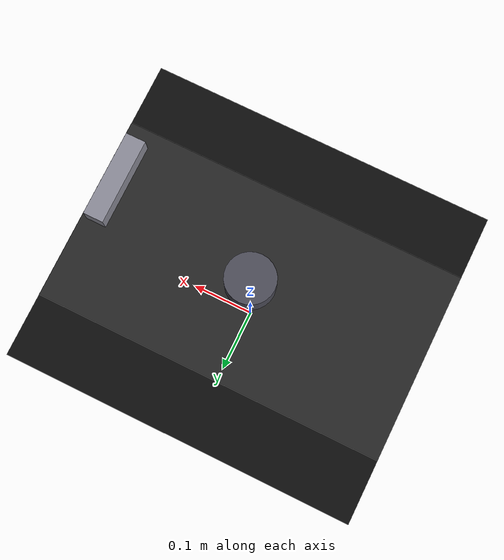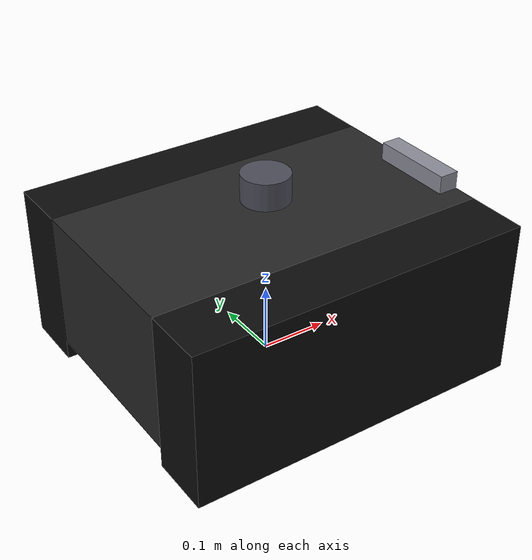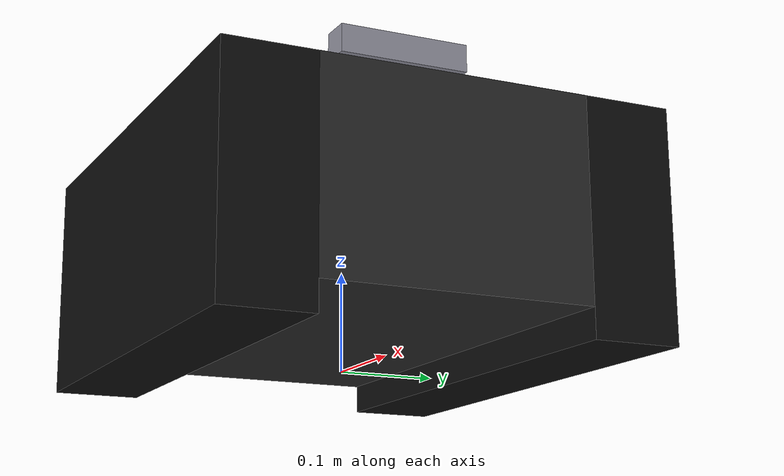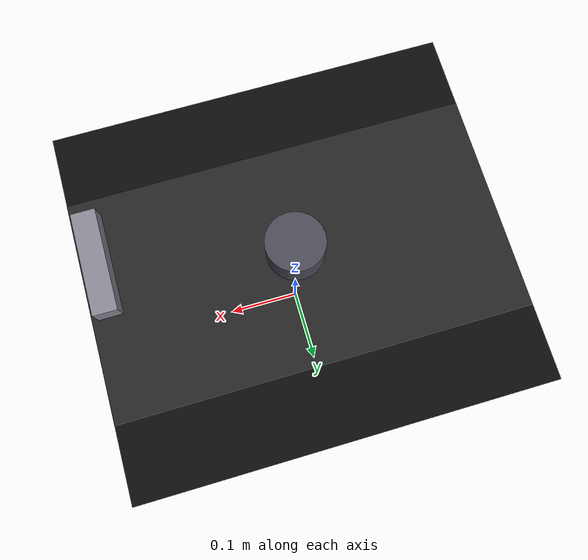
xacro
<?xml version="1.0"?>
<robot name="cugo_v3" xmlns:xacro="http://www.ros.org/wiki/xacro">

  <!-- ===== 車体寸法（要実測） ===== -->
  <xacro:arg name="body_length" default="0.50"/>   <!-- 要実測: 前後長（クローラー含む） -->
  <xacro:arg name="body_width"  default="0.45"/>   <!-- 要実測: 左右幅（クローラー含む） -->
  <xacro:arg name="body_height" default="0.20"/>   <!-- 要実測: 地面から天板までの高さ - 最低地上高 -->
  <xacro:arg name="body_clearance" default="0.03"/> <!-- 要実測: 箱の下面の地面からの高さ（クローラーは接地するので小さめ） -->

  <!-- ===== LiDAR（X4 PRO）取付位置（要実測） ===== -->
  <!-- 既定: 天板の中央。z はスキャン面（回転部の中央）の地面からの高さ -->
  <xacro:arg name="lidar_x"   default="0.0"/>    <!-- 要実測 -->
  <xacro:arg name="lidar_y"   default="0.0"/>    <!-- 要実測 -->
  <xacro:arg name="lidar_z"   default="0.28"/>   <!-- 要実測 -->
  <xacro:arg name="lidar_yaw" default="-1.5708"/> <!-- 実機 RViz で確認: スキャンが +90°（左）にずれていたため -90° 補正 -->

  <!-- ===== カメラ（D455）取付位置（要実測） ===== -->
  <!-- 既定: 車体前端の上。camera_link は D455 の左 IR カメラ（depth 原点）付近、x 前方 -->
  <xacro:arg name="camera_x"     default="0.24"/>  <!-- 要実測 -->
  <xacro:arg name="camera_y"     default="0.0"/>   <!-- 要実測 -->
  <xacro:arg name="camera_z"     default="0.25"/>  <!-- 要実測 -->
  <xacro:arg name="camera_roll"  default="0.0"/>   <!-- 要実測 -->
  <xacro:arg name="camera_pitch" default="0.0"/>   <!-- 要実測: 下向きなら正 -->
  <xacro:arg name="camera_yaw"   default="0.0"/>   <!-- 要実測 -->

  <xacro:property name="L"  value="$(arg body_length)"/>
  <xacro:property name="W"  value="$(arg body_width)"/>
  <xacro:property name="H"  value="$(arg body_height)"/>
  <xacro:property name="ZC" value="$(arg body_clearance)"/>
  <xacro:property name="base_z" value="${ZC + H / 2.0}"/>

  <material name="cugo_body"><color rgba="0.15 0.15 0.15 1.0"/></material>
  <material name="cugo_track"><color rgba="0.05 0.05 0.05 1.0"/></material>
  <material name="lidar_gray"><color rgba="0.3 0.3 0.35 1.0"/></material>
  <material name="camera_gray"><color rgba="0.55 0.55 0.6 1.0"/></material>

  <link name="base_footprint"/>

  <link name="base_link">
    <visual>
      <geometry><box size="${L} ${W * 0.6} ${H}"/></geometry>
      <material name="cugo_body"/>
    </visual>
    <!-- 左右のクローラー（見た目のみ） -->
    <visual>
      <origin xyz="0 ${W * 0.4} ${-ZC / 2.0}"/>
      <geometry><box size="${L} ${W * 0.2} ${H + ZC}"/></geometry>
      <material name="cugo_track"/>
    </visual>
    <visual>
      <origin xyz="0 ${-W * 0.4} ${-ZC / 2.0}"/>
      <geometry><box size="${L} ${W * 0.2} ${H + ZC}"/></geometry>
      <material name="cugo_track"/>
    </visual>
    <collision>
      <geometry><box size="${L} ${W} ${H}"/></geometry>
    </collision>
  </link>

  <joint name="base_footprint_to_base_link" type="fixed">
    <parent link="base_footprint"/>
    <child link="base_link"/>
    <origin xyz="0 0 ${base_z}" rpy="0 0 0"/>
  </joint>

  <!-- YDLIDAR X4 PRO（直径約 70mm） -->
  <link name="laser_frame">
    <visual>
      <origin xyz="0 0 -0.015"/>
      <geometry><cylinder radius="0.035" length="0.04"/></geometry>
      <material name="lidar_gray"/>
    </visual>
  </link>

  <joint name="base_link_to_laser_frame" type="fixed">
    <parent link="base_link"/>
    <child link="laser_frame"/>
    <origin xyz="$(arg lidar_x) $(arg lidar_y) ${$(arg lidar_z) - base_z}" rpy="0 0 $(arg lidar_yaw)"/>
  </joint>

  <link name="camera_link">
    <visual>
      <origin xyz="-0.0145 -0.0475 0"/>  <!-- D455 の depth 原点は筐体中心から約 47.5mm 左 -->
      <geometry><box size="0.029 0.124 0.026"/></geometry>
      <material name="camera_gray"/>
    </visual>
  </link>

  <joint name="base_link_to_camera_link" type="fixed">
    <parent link="base_link"/>
    <child link="camera_link"/>
    <origin xyz="$(arg camera_x) $(arg camera_y) ${$(arg camera_z) - base_z}"
            rpy="$(arg camera_roll) $(arg camera_pitch) $(arg camera_yaw)"/>
  </joint>

</robot>
